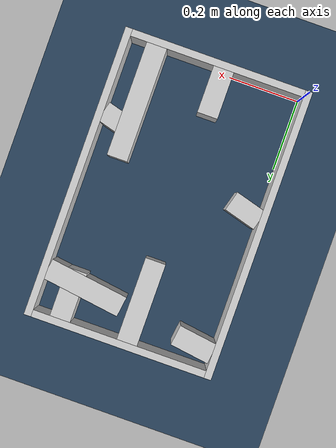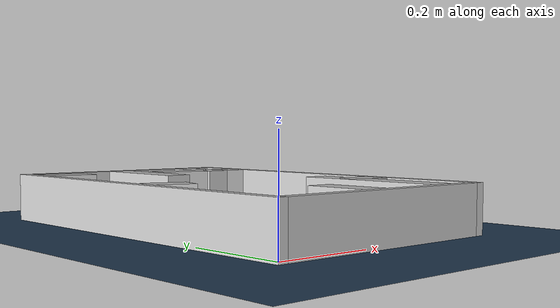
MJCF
<?xml version="1.0" ?>
<mujoco model="generated_real_template">
  <compiler angle="degree"/>
  <option timestep="0.002" integrator="implicitfast" iterations="100" cone="elliptic"/>
  <default>
    <geom density="1"/>
  </default>
  <asset>
    <texture builtin="gradient" height="3072" rgb1="0.3 0.5 0.7" rgb2="0 0 0" type="skybox" width="512"/>
    <texture builtin="checker" height="300" mark="edge" markrgb="0.8 0.8 0.8" name="groundplane" rgb1="0.2 0.3 0.4" rgb2="0.1 0.2 0.3" type="2d" width="300"/>
    <material name="groundplane" reflectance="0.2" texrepeat="5 5" texture="groundplane" texuniform="true"/>
  </asset>
  <worldbody>
    <light dir="0 0 -1" directional="true" pos="0 0 1.5"/>
    <geom name="floor" type="plane" condim="4" friction="0.5 0.005 0.001" material="groundplane" size="0 0 0.05"/>
    <body name="walls">
      <geom name="wall_boundary_left" type="box" condim="4" friction="1.0 0.005 0.0001" rgba="0.8 0.8 0.8 1" pos="-0.010000 0.387500 0.050000" euler="0 0 0.000000" size="0.010000 0.407500 0.050000"/>
      <geom name="wall_boundary_right" type="box" condim="4" friction="1.0 0.005 0.0001" rgba="0.8 0.8 0.8 1" pos="0.500000 0.387500 0.050000" euler="0 0 0.000000" size="0.010000 0.407500 0.050000"/>
      <geom name="wall_boundary_bottom" type="box" condim="4" friction="1.0 0.005 0.0001" rgba="0.8 0.8 0.8 1" pos="0.245000 -0.010000 0.050000" euler="0 0 0.000000" size="0.245000 0.010000 0.050000"/>
      <geom name="wall_boundary_top" type="box" condim="4" friction="1.0 0.005 0.0001" rgba="0.8 0.8 0.8 1" pos="0.245000 0.785000 0.050000" euler="0 0 0.000000" size="0.245000 0.010000 0.050000"/>
      <geom name="wall_inner_1_1" type="box" condim="4" friction="1.0 0.005 0.0001" rgba="0.8 0.8 0.8 1" pos="0.054530 0.719799 0.050000" euler="0 0 -7.947161" size="0.055059 0.028500 0.050000"/>
      <geom name="wall_inner_1_2" type="box" condim="4" friction="1.0 0.005 0.0001" rgba="0.8 0.8 0.8 1" pos="0.379863 0.674382 0.050000" euler="0 0 -7.947161" size="0.111205 0.028500 0.050000"/>
      <geom name="wall_inner_2_1" type="box" condim="4" friction="1.0 0.005 0.0001" rgba="0.8 0.8 0.8 1" pos="0.225119 0.065905 0.050000" euler="0 0 90.000000" size="0.065905 0.028500 0.050000"/>
      <geom name="wall_inner_2_2" type="box" condim="4" friction="1.0 0.005 0.0001" rgba="0.8 0.8 0.8 1" pos="0.225119 0.659528 0.050000" euler="0 0 90.000000" size="0.115472 0.028500 0.050000"/>
      <geom name="wall_inner_3_1" type="box" condim="4" friction="1.0 0.005 0.0001" rgba="0.8 0.8 0.8 1" pos="0.414618 0.159839 0.050000" euler="0 0 90.000000" size="0.159839 0.028500 0.050000"/>
      <geom name="wall_inner_3_2" type="box" condim="4" friction="1.0 0.005 0.0001" rgba="0.8 0.8 0.8 1" pos="0.414618 0.706125 0.050000" euler="0 0 90.000000" size="0.068875 0.028500 0.050000"/>
      <geom name="wall_inner_4_1" type="box" condim="4" friction="1.0 0.005 0.0001" rgba="0.8 0.8 0.8 1" pos="0.044087 0.337119 0.050000" euler="0 0 -15.594122" size="0.045772 0.028500 0.050000"/>
      <geom name="wall_inner_4_2" type="box" condim="4" friction="1.0 0.005 0.0001" rgba="0.8 0.8 0.8 1" pos="0.448292 0.224308 0.050000" euler="0 0 -15.594122" size="0.043302 0.028500 0.050000"/>
    </body>
  </worldbody>
</mujoco>
